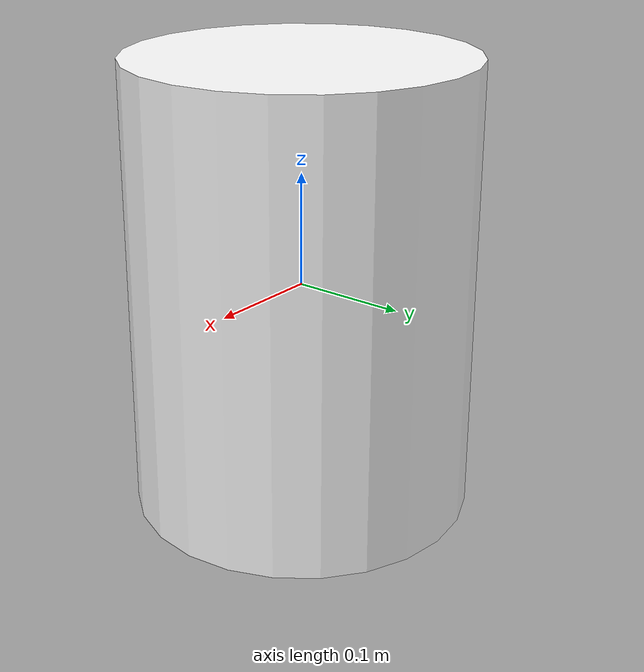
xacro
<?xml version="1.0"?>
<robot name="gripper"
       xmlns:xacro="http://ros.org/wiki/xacro">

  <!-- Constants for robot dimensions -->
  <xacro:property name="gripper_width" value=".3" />
  <xacro:property name="gripper_length" value=".4" />
  <xacro:property name="gripper_height" value=".3" />
  <xacro:property name="gripper_radius" value=".15" />
  <xacro:property name="gripper_mass" value=".15" />

  <!-- Macro for cylinder mass moment of inertia -->
  <xacro:macro name="cylinder_moment_of_inertia" params="m r h">
    <inertia ixx="${m * (3 * r * r + h * h) / 12}" ixy="0.0" ixz="0.0"
	     iyy="${m * (3 * r * r + h * h) / 12}" iyz="0.0"
	     izz="${m * r * r / 2}" />
  </xacro:macro>

  <!-- Macro for cuboid mass moment of inertia -->
  <xacro:macro name="cuboid_moment_of_inertia" params="m d1 d2 d3">
    <inertia ixx="${m * (d2 * d2 + d3 * d3) / 12}" ixy="0.0" ixz="0.0"
	     iyy="${m * (d1 * d1 + d3 * d3) / 12}" iyz="0.0"
	     izz="${m * (d1 * d1 + d2 * d2) / 12}" />
  </xacro:macro>

  <!-- Gripper link -->
  <link name="gripper_link">
    <visual>
      <geometry>
	<cylinder length="${gripper_length}" radius="${gripper_radius}" />
      </geometry>
      <material name="white">
	<color rgba="1 1 1 1" />
      </material>
    </visual>

    <collision>
      <geometry>
	<cylinder length="${gripper_length}" radius="${gripper_radius}" />
      </geometry>
    </collision>

    <inertial>
      <mass value="${gripper_mass}" />
      <xacro:cylinder_moment_of_inertia m="${gripper_mass}" r="${gripper_radius}" h="${gripper_length}" />
    </inertial>
  </link>

</robot>
